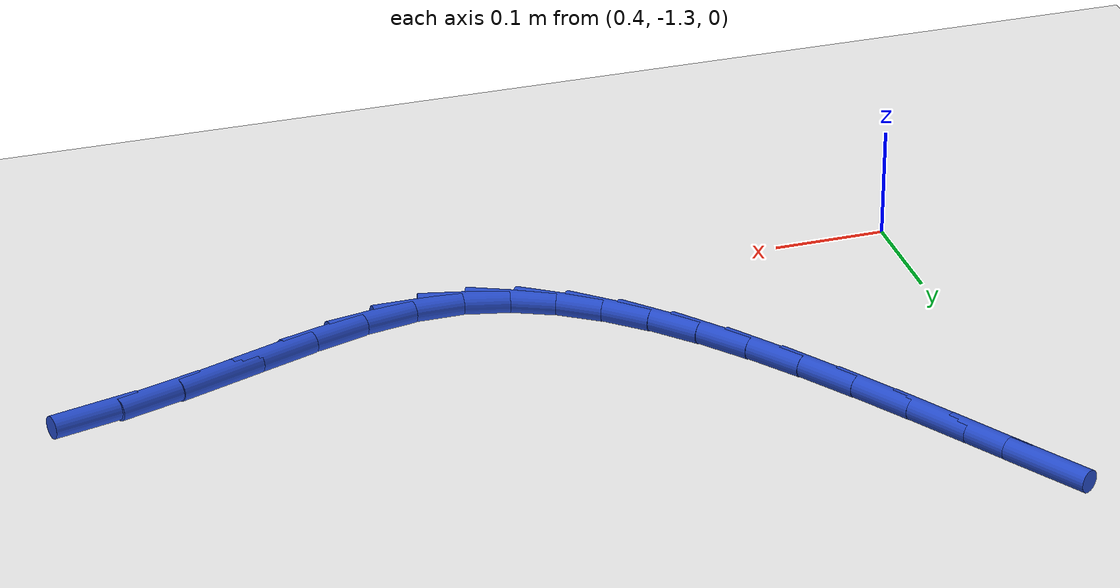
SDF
<sdf version="1.6">
 <world name="default">
  <model name="ground_plane">
   <static>1</static>
   <link name="link">
    <collision name="collision">
     <geometry><plane><normal>0 0 1</normal><size>100 100</size></plane></geometry>
     <surface><friction><ode><mu>100</mu><mu2>50</mu2></ode></friction></surface>
    </collision>
    <visual name="visual">
     <cast_shadows>0</cast_shadows>
     <geometry><plane><normal>0 0 1</normal><size>100 100</size></plane></geometry>
     <material>
      <script><uri>file://media/materials/scripts/gazebo.material</uri><name>Gazebo/WhiteGlow</name></script>
     </material>
    </visual>
   </link>
  </model>
  <model name="line">
   <link name="link_113">
    <pose>1.1428275538060377 -1.1776860495382437 0.01 0 1.57 0.24585545422881322</pose>
    <collision name="collision">
     <geometry><cylinder><radius>0.01</radius><length>0.08</length></cylinder></geometry>
    </collision>
    <visual name="visual">
     <material>
      <script><name>Gazebo/Blue</name><uri>file://media/materials/scripts/gazebo.material</uri></script>
     </material>
     <geometry><cylinder><radius>0.01</radius><length>0.08</length></cylinder></geometry>
    </visual>
   </link>
   <link name="link_114">
    <pose>1.0845022829805844 -1.192321714442202 0.01 0 1.57 0.3151020097592301</pose>
    <collision name="collision">
     <geometry><cylinder><radius>0.01</radius><length>0.08</length></cylinder></geometry>
    </collision>
    <visual name="visual">
     <material>
      <script><name>Gazebo/Blue</name><uri>file://media/materials/scripts/gazebo.material</uri></script>
     </material>
     <geometry><cylinder><radius>0.01</radius><length>0.08</length></cylinder></geometry>
    </visual>
   </link>
   <link name="link_115">
    <pose>1.0297267035908606 -1.2101764876528645 0.01 0 1.57 0.35171115941061765</pose>
    <collision name="collision">
     <geometry><cylinder><radius>0.01</radius><length>0.08</length></cylinder></geometry>
    </collision>
    <visual name="visual">
     <material>
      <script><name>Gazebo/Blue</name><uri>file://media/materials/scripts/gazebo.material</uri></script>
     </material>
     <geometry><cylinder><radius>0.01</radius><length>0.08</length></cylinder></geometry>
    </visual>
   </link>
   <link name="link_116">
    <pose>0.9782204186091009 -1.2290776910022423 0.01 0 1.57 0.3485550529771105</pose>
    <collision name="collision">
     <geometry><cylinder><radius>0.01</radius><length>0.08</length></cylinder></geometry>
    </collision>
    <visual name="visual">
     <material>
      <script><name>Gazebo/Blue</name><uri>file://media/materials/scripts/gazebo.material</uri></script>
     </material>
     <geometry><cylinder><radius>0.01</radius><length>0.08</length></cylinder></geometry>
    </visual>
   </link>
   <link name="link_117">
    <pose>0.9296515753900727 -1.2467272140922776 0.01 0 1.57 0.2976479198444069</pose>
    <collision name="collision">
     <geometry><cylinder><radius>0.01</radius><length>0.08</length></cylinder></geometry>
    </collision>
    <visual name="visual">
     <material>
      <script><name>Gazebo/Blue</name><uri>file://media/materials/scripts/gazebo.material</uri></script>
     </material>
     <geometry><cylinder><radius>0.01</radius><length>0.08</length></cylinder></geometry>
    </visual>
   </link>
   <link name="link_118">
    <pose>0.8836883212885418 -1.2608269465249131 0.01 0 1.57 0.1866753398941896</pose>
    <collision name="collision">
     <geometry><cylinder><radius>0.01</radius><length>0.08</length></cylinder></geometry>
    </collision>
    <visual name="visual">
     <material>
      <script><name>Gazebo/Blue</name><uri>file://media/materials/scripts/gazebo.material</uri></script>
     </material>
     <geometry><cylinder><radius>0.01</radius><length>0.08</length></cylinder></geometry>
    </visual>
   </link>
   <link name="link_119">
    <pose>0.839998803659277 -1.269078777902091 0.01 0 1.57 0.003816149259360909</pose>
    <collision name="collision">
     <geometry><cylinder><radius>0.01</radius><length>0.08</length></cylinder></geometry>
    </collision>
    <visual name="visual">
     <material>
      <script><name>Gazebo/Blue</name><uri>file://media/materials/scripts/gazebo.material</uri></script>
     </material>
     <geometry><cylinder><radius>0.01</radius><length>0.08</length></cylinder></geometry>
    </visual>
   </link>
   <link name="link_120">
    <pose>0.7982540935297469 -1.2692380827200531 0.01 0 1.57 -0.21456412108983422</pose>
    <collision name="collision">
     <geometry><cylinder><radius>0.01</radius><length>0.08</length></cylinder></geometry>
    </collision>
    <visual name="visual">
     <material>
      <script><name>Gazebo/Blue</name><uri>file://media/materials/scripts/gazebo.material</uri></script>
     </material>
     <geometry><cylinder><radius>0.01</radius><length>0.08</length></cylinder></geometry>
    </visual>
   </link>
   <link name="link_121">
    <pose>0.7582045407124556 -1.2605105405771078 0.01 0 1.57 -0.41182244454167877</pose>
    <collision name="collision">
     <geometry><cylinder><radius>0.01</radius><length>0.08</length></cylinder></geometry>
    </collision>
    <visual name="visual">
     <material>
      <script><name>Gazebo/Blue</name><uri>file://media/materials/scripts/gazebo.material</uri></script>
     </material>
     <geometry><cylinder><radius>0.01</radius><length>0.08</length></cylinder></geometry>
    </visual>
   </link>
   <link name="link_122">
    <pose>0.7196870987019232 -1.2436861358995357 0.01 0 1.57 -0.5746195698286974</pose>
    <collision name="collision">
     <geometry><cylinder><radius>0.01</radius><length>0.08</length></cylinder></geometry>
    </collision>
    <visual name="visual">
     <material>
      <script><name>Gazebo/Blue</name><uri>file://media/materials/scripts/gazebo.material</uri></script>
     </material>
     <geometry><cylinder><radius>0.01</radius><length>0.08</length></cylinder></geometry>
    </visual>
   </link>
   <link name="link_123">
    <pose>0.6825431132321799 -1.2196352035802969 0.01 0 1.57 -0.7023462709712291</pose>
    <collision name="collision">
     <geometry><cylinder><radius>0.01</radius><length>0.08</length></cylinder></geometry>
    </collision>
    <visual name="visual">
     <material>
      <script><name>Gazebo/Blue</name><uri>file://media/materials/scripts/gazebo.material</uri></script>
     </material>
     <geometry><cylinder><radius>0.01</radius><length>0.08</length></cylinder></geometry>
    </visual>
   </link>
   <link name="link_124">
    <pose>0.6466139300372584 -1.1892280785123506 0.01 0 1.57 -0.7998101247870321</pose>
    <collision name="collision">
     <geometry><cylinder><radius>0.01</radius><length>0.08</length></cylinder></geometry>
    </collision>
    <visual name="visual">
     <material>
      <script><name>Gazebo/Blue</name><uri>file://media/materials/scripts/gazebo.material</uri></script>
     </material>
     <geometry><cylinder><radius>0.01</radius><length>0.08</length></cylinder></geometry>
    </visual>
   </link>
   <link name="link_125">
    <pose>0.6117408948511913 -1.153335095588657 0.01 0 1.57 -0.872883859291997</pose>
    <collision name="collision">
     <geometry><cylinder><radius>0.01</radius><length>0.08</length></cylinder></geometry>
    </collision>
    <visual name="visual">
     <material>
      <script><name>Gazebo/Blue</name><uri>file://media/materials/scripts/gazebo.material</uri></script>
     </material>
     <geometry><cylinder><radius>0.01</radius><length>0.08</length></cylinder></geometry>
    </visual>
   </link>
   <link name="link_126">
    <pose>0.5777653534080089 -1.1128265897021745 0.01 0 1.57 -0.9266240605434105</pose>
    <collision name="collision">
     <geometry><cylinder><radius>0.01</radius><length>0.08</length></cylinder></geometry>
    </collision>
    <visual name="visual">
     <material>
      <script><name>Gazebo/Blue</name><uri>file://media/materials/scripts/gazebo.material</uri></script>
     </material>
     <geometry><cylinder><radius>0.01</radius><length>0.08</length></cylinder></geometry>
    </visual>
   </link>
   <link name="link_127">
    <pose>0.5445286514417449 -1.0685728957458644 0.01 0 1.57 -0.9648349391312004</pose>
    <collision name="collision">
     <geometry><cylinder><radius>0.01</radius><length>0.08</length></cylinder></geometry>
    </collision>
    <visual name="visual">
     <material>
      <script><name>Gazebo/Blue</name><uri>file://media/materials/scripts/gazebo.material</uri></script>
     </material>
     <geometry><cylinder><radius>0.01</radius><length>0.08</length></cylinder></geometry>
    </visual>
   </link>
   <link name="link_128">
    <pose>0.5118721346864296 -1.0214443486126852 0.01 0 1.57 -0.9901621627644575</pose>
    <collision name="collision">
     <geometry><cylinder><radius>0.01</radius><length>0.08</length></cylinder></geometry>
    </collision>
    <visual name="visual">
     <material>
      <script><name>Gazebo/Blue</name><uri>file://media/materials/scripts/gazebo.material</uri></script>
     </material>
     <geometry><cylinder><radius>0.01</radius><length>0.08</length></cylinder></geometry>
    </visual>
   </link>
   <link name="link_129">
    <pose>0.47963714887609576 -0.9723112831955967 0.01 0 1.57 -1.0042956801958862</pose>
    <collision name="collision">
     <geometry><cylinder><radius>0.01</radius><length>0.08</length></cylinder></geometry>
    </collision>
    <visual name="visual">
     <material>
      <script><name>Gazebo/Blue</name><uri>file://media/materials/scripts/gazebo.material</uri></script>
     </material>
     <geometry><cylinder><radius>0.01</radius><length>0.08</length></cylinder></geometry>
    </visual>
   </link>
   <link name="link_130">
    <pose>0.4476650397447755 -0.9220440343875593 0.01 0 1.57 -1.0081380290167339</pose>
    <collision name="collision">
     <geometry><cylinder><radius>0.01</radius><length>0.08</length></cylinder></geometry>
    </collision>
    <visual name="visual">
     <material>
      <script><name>Gazebo/Blue</name><uri>file://media/materials/scripts/gazebo.material</uri></script>
     </material>
     <geometry><cylinder><radius>0.01</radius><length>0.08</length></cylinder></geometry>
    </visual>
   </link>
   <link name="link_131">
    <pose>0.41579715302650005 -0.8715129370815315 0.01 0 1.57 -1.0019014777335034</pose>
    <collision name="collision">
     <geometry><cylinder><radius>0.01</radius><length>0.08</length></cylinder></geometry>
    </collision>
    <visual name="visual">
     <material>
      <script><name>Gazebo/Blue</name><uri>file://media/materials/scripts/gazebo.material</uri></script>
     </material>
     <geometry><cylinder><radius>0.01</radius><length>0.08</length></cylinder></geometry>
    </visual>
   </link>
  </model>
 </world>
</sdf>
